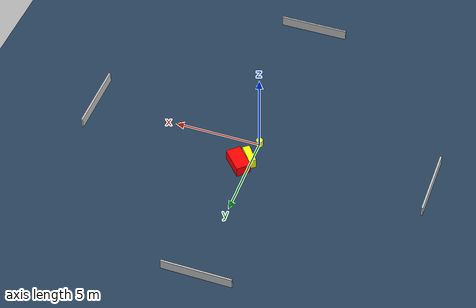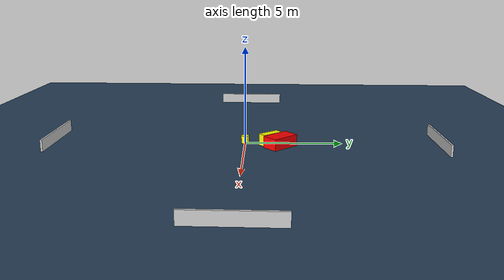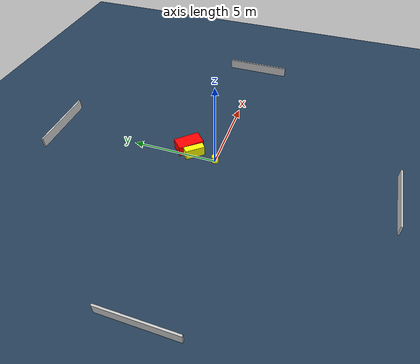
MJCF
<?xml version="1.0" ?>
<mujoco model="generated_environment">
  <option timestep="0.01" integrator="RK4" cone="elliptic"/>
  <default>
    <geom density="1"/>
  </default>
  <asset>
    <texture builtin="gradient" height="3072" name="skybox" rgb1="0.3 0.5 0.7" rgb2="0 0 0" type="skybox" width="512"/>
    <texture builtin="checker" height="300" name="groundplane" rgb1="0.2 0.3 0.4" rgb2="0.1 0.2 0.3" type="2d" width="300"/>
    <material name="groundplane" reflectance="0.2" texrepeat="5 5" texture="groundplane"/>
  </asset>
  <worldbody>
    <light dir="0 0 -1" directional="true" pos="0 0 1.5"/>
    <geom condim="3" friction="0.5 0.005 0.001" material="groundplane" name="floor" pos="0 0 0" size="0 0 0.05" type="plane"/>
    <body name="walls">
      <geom name="wall_1" condim="4" pos="-10.0 0.0 0.3" rgba="0.800000011920929 0.800000011920929 0.800000011920929 1.0" size="0.05 2.0 0.3" type="box"/>
      <geom name="wall_2" condim="4" pos="10.0 0.0 0.3" rgba="0.800000011920929 0.800000011920929 0.800000011920929 1.0" size="0.05 2.0 0.3" type="box"/>
      <geom name="wall_3" condim="4" pos="0.0 -10.0 0.3" rgba="0.800000011920929 0.800000011920929 0.800000011920929 1.0" size="2.0 0.05 0.3" type="box"/>
      <geom name="wall_4" condim="4" pos="0.0 10.0 0.3" rgba="0.800000011920929 0.800000011920929 0.800000011920929 1.0" size="2.0 0.05 0.3" type="box"/>
    </body>
    <body name="robot">
      <joint name="joint_x" type="slide" pos="0 0 0" axis="1 0 0"/>
      <joint name="joint_y" type="slide" pos="0 0 0" axis="0 1 0"/>
      <geom name="robot" type="cylinder" pos="0.0 0.0 0.2" size="0.2 0.2 0.0" mass="5.0" friction="1.0 0.005 0.0001" condim="4" rgba="1.0 1.0 0.0 1.0"/>
    </body>
    <body name="obstacle_1_movable">
      <geom name="obstacle_1_movable" condim="4" pos="0.14308373745332115 1.3191685457305382 0.3" euler="0 0 129.28136984153414" friction="0.0 0.005 0.001" rgba="1.0 1.0 0.0 1.0" size="0.5753690352293868 0.20677218431595246 0.3" type="box" mass="0.1"/>
      <joint type="free"/>
    </body>
    <body name="obstacle_2_static">
      <geom name="obstacle_2_static" condim="4" pos="0.6056913124890022 1.8208733373085157 0.3" euler="0 0 42.8993928070177" friction="0.0 0.005 0.001" rgba="1.0 0.0 0.0 1.0" size="0.42923730946772326 0.7570496762639551 0.3" type="box"/>
    </body>
  </worldbody>
  <actuator>
    <motor name="actuator_x" joint="joint_x" gear="1" ctrlrange="-1 1"/>
    <motor name="actuator_y" joint="joint_y" gear="1" ctrlrange="-1 1"/>
  </actuator>
</mujoco>
